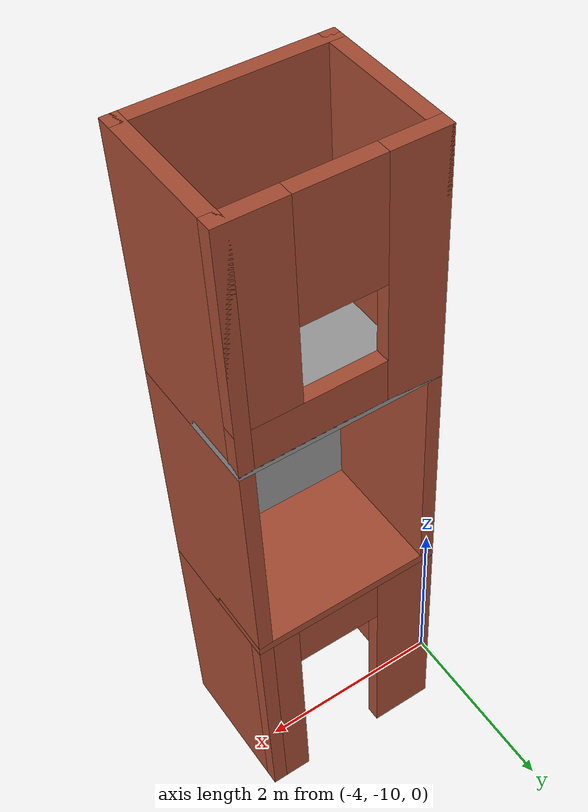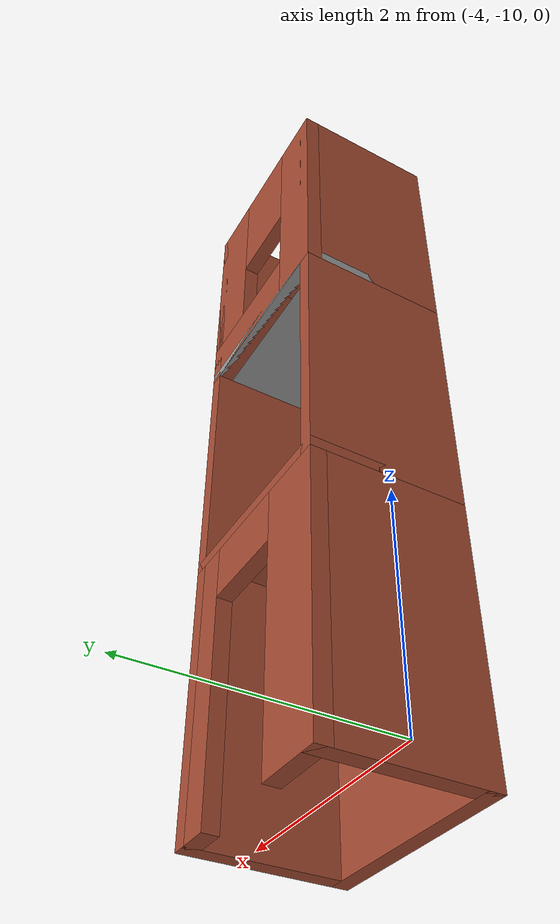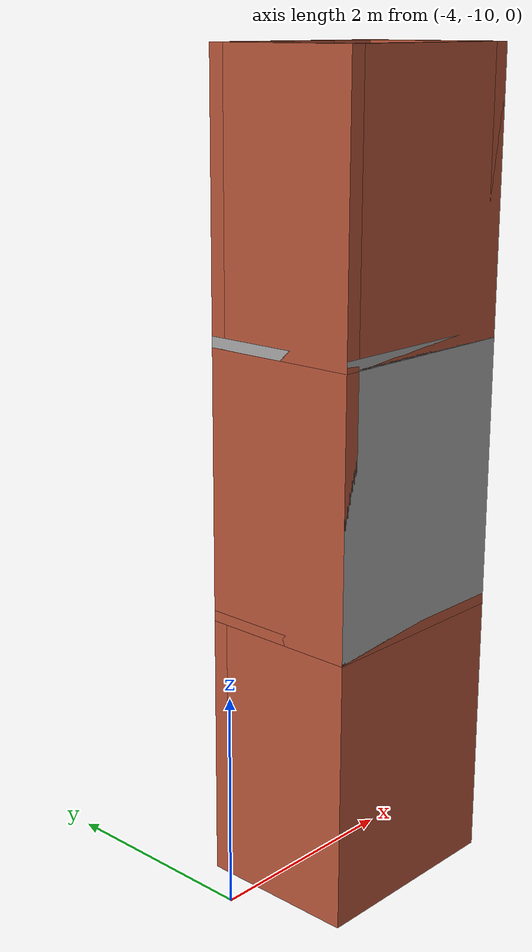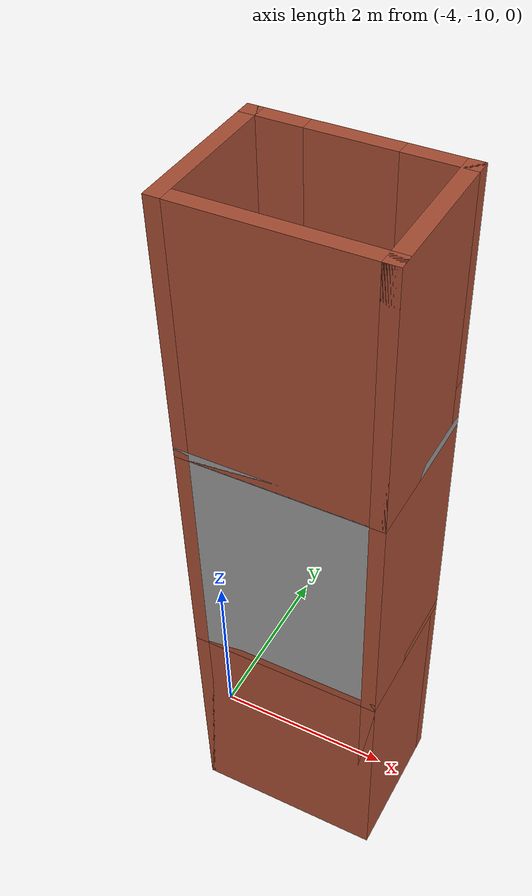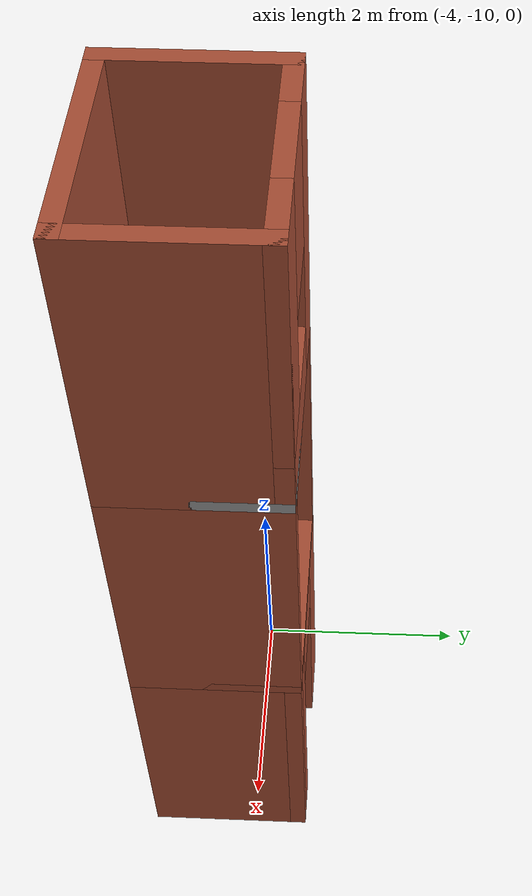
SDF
<?xml version='1.0'?>
<sdf version='1.7'>
  <model name='beranda3'>
    <pose>-1.8375 -5.4975 0 0 -0 0</pose>
    <link name='Floor_5'>
      <collision name='Floor_5_Collision'>
        <geometry>
          <box>
            <size>2 1.5 0.1</size>
          </box>
        </geometry>
        <pose>0 0 0.05 0 -0 0</pose>
      </collision>
      <visual name='Floor_5_Visual'>
        <pose>0 0 0.05 0 -0 0</pose>
        <geometry>
          <box>
            <size>2 1.5 0.1</size>
          </box>
        </geometry>
        <material>
          <script>
            <uri>file://media/materials/scripts/gazebo.material</uri>
            <name>Gazebo/Bricks</name>
          </script>
          <ambient>1 1 1 1</ambient>
        </material>
        <meta>
          <layer>1</layer>
        </meta>
      </visual>
      <pose>-0.8375 -4.7475 2.5 0 -0 0</pose>
    </link>
    <link name='Floor_6'>
      <collision name='Floor_6_Collision'>
        <geometry>
          <box>
            <size>2 1.5 0.1</size>
          </box>
        </geometry>
        <pose>0 0 0.05 0 -0 0</pose>
      </collision>
      <visual name='Floor_6_Visual'>
        <pose>0 0 0.05 0 -0 0</pose>
        <geometry>
          <box>
            <size>2 1.5 0.1</size>
          </box>
        </geometry>
        <material>
          <script>
            <uri>file://media/materials/scripts/gazebo.material</uri>
            <name>Gazebo/Grey</name>
          </script>
          <ambient>1 1 1 1</ambient>
        </material>
        <meta>
          <layer>2</layer>
        </meta>
      </visual>
      <pose>-0.8375 -4.7475 5 0 -0 0</pose>
    </link>
    <link name='Wall_21'>
      <collision name='Wall_21_Collision'>
        <geometry>
          <box>
            <size>2 0.15 2.5</size>
          </box>
        </geometry>
        <pose>0 0 1.25 0 -0 0</pose>
      </collision>
      <visual name='Wall_21_Visual'>
        <pose>0 0 1.25 0 -0 0</pose>
        <geometry>
          <box>
            <size>2 0.15 2.5</size>
          </box>
        </geometry>
        <material>
          <script>
            <uri>file://media/materials/scripts/gazebo.material</uri>
            <name>Gazebo/Bricks</name>
          </script>
          <ambient>1 1 1 1</ambient>
        </material>
        <meta>
          <layer>0</layer>
        </meta>
      </visual>
      <pose>-0.8375 -5.4225 0 0 -0 0</pose>
    </link>
    <link name='Wall_22'>
      <collision name='Wall_22_Collision'>
        <geometry>
          <box>
            <size>1.5 0.15 2.5</size>
          </box>
        </geometry>
        <pose>0 0 1.25 0 -0 0</pose>
      </collision>
      <visual name='Wall_22_Visual'>
        <pose>0 0 1.25 0 -0 0</pose>
        <geometry>
          <box>
            <size>1.5 0.15 2.5</size>
          </box>
        </geometry>
        <material>
          <script>
            <uri>file://media/materials/scripts/gazebo.material</uri>
            <name>Gazebo/Bricks</name>
          </script>
          <ambient>1 1 1 1</ambient>
        </material>
        <meta>
          <layer>0</layer>
        </meta>
      </visual>
      <pose>0.0875 -4.7475 0 0 -0 1.5708</pose>
    </link>
    <link name='Wall_23'>
      <pose>-0.8375 -4.0725 0 0 -0 3.14159</pose>
      <visual name='Wall_23_Visual_0'>
        <pose>-0.7825 0 1.25 0 -0 0</pose>
        <geometry>
          <box>
            <size>0.435 0.15 2.5</size>
          </box>
        </geometry>
        <material>
          <script>
            <uri>file://media/materials/scripts/gazebo.material</uri>
            <name>Gazebo/Bricks</name>
          </script>
          <ambient>1 1 1 1</ambient>
        </material>
        <meta>
          <layer>0</layer>
        </meta>
      </visual>
      <collision name='Wall_23_Collision_0'>
        <geometry>
          <box>
            <size>0.435 0.15 2.5</size>
          </box>
        </geometry>
        <pose>-0.7825 0 1.25 0 -0 0</pose>
      </collision>
      <visual name='Wall_23_Visual_1'>
        <pose>0.6675 0 1.25 0 -0 0</pose>
        <geometry>
          <box>
            <size>0.665 0.15 2.5</size>
          </box>
        </geometry>
        <material>
          <script>
            <uri>file://media/materials/scripts/gazebo.material</uri>
            <name>Gazebo/Bricks</name>
          </script>
          <ambient>1 1 1 1</ambient>
        </material>
        <meta>
          <layer>0</layer>
        </meta>
      </visual>
      <collision name='Wall_23_Collision_1'>
        <geometry>
          <box>
            <size>0.665 0.15 2.5</size>
          </box>
        </geometry>
        <pose>0.6675 0 1.25 0 -0 0</pose>
      </collision>
      <visual name='Wall_23_Visual_2'>
        <pose>-0.115 0 2.25 0 -0 0</pose>
        <geometry>
          <box>
            <size>0.9 0.15 0.5</size>
          </box>
        </geometry>
        <material>
          <script>
            <uri>file://media/materials/scripts/gazebo.material</uri>
            <name>Gazebo/Bricks</name>
          </script>
          <ambient>1 1 1 1</ambient>
        </material>
        <meta>
          <layer>0</layer>
        </meta>
      </visual>
      <collision name='Wall_23_Collision_2'>
        <geometry>
          <box>
            <size>0.9 0.15 0.5</size>
          </box>
        </geometry>
        <pose>-0.115 0 2.25 0 -0 0</pose>
      </collision>
    </link>
    <link name='Wall_24'>
      <collision name='Wall_24_Collision'>
        <geometry>
          <box>
            <size>1.5 0.15 2.5</size>
          </box>
        </geometry>
        <pose>0 0 1.25 0 -0 0</pose>
      </collision>
      <visual name='Wall_24_Visual'>
        <pose>0 0 1.25 0 -0 0</pose>
        <geometry>
          <box>
            <size>1.5 0.15 2.5</size>
          </box>
        </geometry>
        <material>
          <script>
            <uri>file://media/materials/scripts/gazebo.material</uri>
            <name>Gazebo/Bricks</name>
          </script>
          <ambient>1 1 1 1</ambient>
        </material>
        <meta>
          <layer>0</layer>
        </meta>
      </visual>
      <pose>-1.7625 -4.7475 0 0 -0 -1.5708</pose>
    </link>
    <link name='Wall_47'>
      <collision name='Wall_47_Collision'>
        <geometry>
          <box>
            <size>2 0.15 2.5</size>
          </box>
        </geometry>
        <pose>0 0 1.25 0 -0 0</pose>
      </collision>
      <visual name='Wall_47_Visual'>
        <pose>0 0 1.25 0 -0 0</pose>
        <geometry>
          <box>
            <size>2 0.15 2.5</size>
          </box>
        </geometry>
        <material>
          <script>
            <uri>file://media/materials/scripts/gazebo.material</uri>
            <name>Gazebo/Grey</name>
          </script>
          <ambient>1 1 1 1</ambient>
        </material>
        <meta>
          <layer>1</layer>
        </meta>
      </visual>
      <pose>-0.8375 -5.4225 2.5 0 -0 0</pose>
    </link>
    <link name='Wall_48'>
      <collision name='Wall_48_Collision'>
        <geometry>
          <box>
            <size>1.5 0.15 2.5</size>
          </box>
        </geometry>
        <pose>0 0 1.25 0 -0 0</pose>
      </collision>
      <visual name='Wall_48_Visual'>
        <pose>0 0 1.25 0 -0 0</pose>
        <geometry>
          <box>
            <size>1.5 0.15 2.5</size>
          </box>
        </geometry>
        <material>
          <script>
            <uri>file://media/materials/scripts/gazebo.material</uri>
            <name>Gazebo/Bricks</name>
          </script>
          <ambient>1 1 1 1</ambient>
        </material>
        <meta>
          <layer>1</layer>
        </meta>
      </visual>
      <pose>0.0875 -4.7475 2.5 0 -0 1.5708</pose>
    </link>
    <link name='Wall_50'>
      <collision name='Wall_50_Collision'>
        <geometry>
          <box>
            <size>1.5 0.15 2.5</size>
          </box>
        </geometry>
        <pose>0 0 1.25 0 -0 0</pose>
      </collision>
      <visual name='Wall_50_Visual'>
        <pose>0 0 1.25 0 -0 0</pose>
        <geometry>
          <box>
            <size>1.5 0.15 2.5</size>
          </box>
        </geometry>
        <material>
          <script>
            <uri>file://media/materials/scripts/gazebo.material</uri>
            <name>Gazebo/Bricks</name>
          </script>
          <ambient>1 1 1 1</ambient>
        </material>
        <meta>
          <layer>1</layer>
        </meta>
      </visual>
      <pose>-1.7625 -4.7475 2.5 0 -0 -1.5708</pose>
    </link>
    <link name='Wall_51'>
      <collision name='Wall_51_Collision'>
        <geometry>
          <box>
            <size>2 0.15 2.5</size>
          </box>
        </geometry>
        <pose>0 0 1.25 0 -0 0</pose>
      </collision>
      <visual name='Wall_51_Visual'>
        <pose>0 0 1.25 0 -0 0</pose>
        <geometry>
          <box>
            <size>2 0.15 2.5</size>
          </box>
        </geometry>
        <material>
          <script>
            <uri>file://media/materials/scripts/gazebo.material</uri>
            <name>Gazebo/Bricks</name>
          </script>
          <ambient>1 1 1 1</ambient>
        </material>
        <meta>
          <layer>2</layer>
        </meta>
      </visual>
      <pose>-0.8375 -5.4225 5 0 -0 0</pose>
    </link>
    <link name='Wall_52'>
      <collision name='Wall_52_Collision'>
        <geometry>
          <box>
            <size>1.5 0.15 2.5</size>
          </box>
        </geometry>
        <pose>0 0 1.25 0 -0 0</pose>
      </collision>
      <visual name='Wall_52_Visual'>
        <pose>0 0 1.25 0 -0 0</pose>
        <geometry>
          <box>
            <size>1.5 0.15 2.5</size>
          </box>
        </geometry>
        <material>
          <script>
            <uri>file://media/materials/scripts/gazebo.material</uri>
            <name>Gazebo/Bricks</name>
          </script>
          <ambient>1 1 1 1</ambient>
        </material>
        <meta>
          <layer>2</layer>
        </meta>
      </visual>
      <pose>0.0875 -4.7475 5 0 -0 1.5708</pose>
    </link>
    <link name='Wall_53'>
      <collision name='Wall_53_Collision'>
        <geometry>
          <box>
            <size>1.5 0.15 2.5</size>
          </box>
        </geometry>
        <pose>0 0 1.25 0 -0 0</pose>
      </collision>
      <visual name='Wall_53_Visual'>
        <pose>0 0 1.25 0 -0 0</pose>
        <geometry>
          <box>
            <size>1.5 0.15 2.5</size>
          </box>
        </geometry>
        <material>
          <script>
            <uri>file://media/materials/scripts/gazebo.material</uri>
            <name>Gazebo/Bricks</name>
          </script>
          <ambient>1 1 1 1</ambient>
        </material>
        <meta>
          <layer>2</layer>
        </meta>
      </visual>
      <pose>-1.7625 -4.7475 5 0 -0 -1.5708</pose>
    </link>
    <link name='Wall_54'>
      <pose>-0.8375 -4.0725 5 0 -0 0</pose>
      <visual name='Wall_54_Visual_0'>
        <pose>-0.7175 0 1.25 0 -0 0</pose>
        <geometry>
          <box>
            <size>0.565 0.15 2.5</size>
          </box>
        </geometry>
        <material>
          <script>
            <uri>file://media/materials/scripts/gazebo.material</uri>
            <name>Gazebo/Bricks</name>
          </script>
          <ambient>1 1 1 1</ambient>
        </material>
        <meta>
          <layer>2</layer>
        </meta>
      </visual>
      <collision name='Wall_54_Collision_0'>
        <geometry>
          <box>
            <size>0.565 0.15 2.5</size>
          </box>
        </geometry>
        <pose>-0.7175 0 1.25 0 -0 0</pose>
      </collision>
      <visual name='Wall_54_Visual_1'>
        <pose>0.2825 0 0.25 0 -0 0</pose>
        <geometry>
          <box>
            <size>1.435 0.15 0.5</size>
          </box>
        </geometry>
        <material>
          <script>
            <uri>file://media/materials/scripts/gazebo.material</uri>
            <name>Gazebo/Bricks</name>
          </script>
          <ambient>1 1 1 1</ambient>
        </material>
        <meta>
          <layer>2</layer>
        </meta>
      </visual>
      <collision name='Wall_54_Collision_1'>
        <geometry>
          <box>
            <size>1.435 0.15 0.5</size>
          </box>
        </geometry>
        <pose>0.2825 0 0.25 0 -0 0</pose>
      </collision>
      <visual name='Wall_54_Visual_2'>
        <pose>0.6825 0 1.5 0 -0 0</pose>
        <geometry>
          <box>
            <size>0.635 0.15 2</size>
          </box>
        </geometry>
        <material>
          <script>
            <uri>file://media/materials/scripts/gazebo.material</uri>
            <name>Gazebo/Bricks</name>
          </script>
          <ambient>1 1 1 1</ambient>
        </material>
        <meta>
          <layer>2</layer>
        </meta>
      </visual>
      <collision name='Wall_54_Collision_2'>
        <geometry>
          <box>
            <size>0.635 0.15 2</size>
          </box>
        </geometry>
        <pose>0.6825 0 1.5 0 -0 0</pose>
      </collision>
      <visual name='Wall_54_Visual_3'>
        <pose>-0.035 0 1.9 0 -0 0</pose>
        <geometry>
          <box>
            <size>0.8 0.15 1.2</size>
          </box>
        </geometry>
        <material>
          <script>
            <uri>file://media/materials/scripts/gazebo.material</uri>
            <name>Gazebo/Bricks</name>
          </script>
          <ambient>1 1 1 1</ambient>
        </material>
        <meta>
          <layer>2</layer>
        </meta>
      </visual>
      <collision name='Wall_54_Collision_3'>
        <geometry>
          <box>
            <size>0.8 0.15 1.2</size>
          </box>
        </geometry>
        <pose>-0.035 0 1.9 0 -0 0</pose>
      </collision>
    </link>
    <static>1</static>
  </model>
</sdf>
